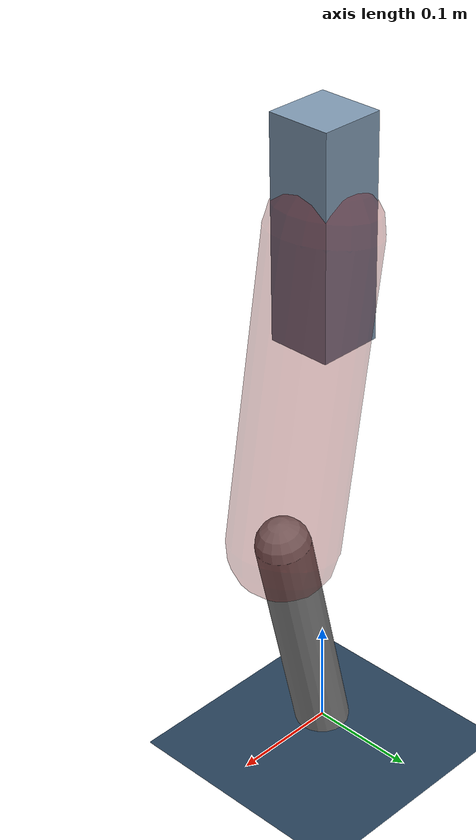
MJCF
<mujoco model="Hopper2D">
	<compiler inertiafromgeom="true" angle="radian" />
	<option timestep="0.001" integrator="implicit" cone="elliptic" solver="Newton" tolerance="1e-10" />

	<default>
		<geom contype="1" conaffinity="1" condim="3" friction="2 0.005 0.0001" solref="0.005 1" />
		<joint limited="true" damping="0.1" />
	</default>

	<asset>
		<texture name="skybox" type="skybox" builtin="gradient" rgb1=".4 .6 .8" rgb2="0 0 0" width="800" height="800" />
		<texture name="grid" type="2d" builtin="checker" rgb1=".1 .2 .3" rgb2=".2 .3 .4" width="300" height="300" mark="edge" markrgb=".2 .3 .4" />
		<material name="ground" texture="grid" texrepeat="1 1" texuniform="true" reflectance="0.1" />
		<material name="leg" rgba="0.5 0.6 0.7 1" />
	</asset>

	<worldbody>

		<geom name="floor" type="plane" size="5 5 0.25" material="ground" />

		<light directional="false" diffuse="0.8 0.8 0.8" specular="0.3 0.3 0.3" pos="0 0 2" dir="0 0 -1" />
		<light mode="targetbodycom" target="base" directional="false" diffuse="0.8 0.8 0.8" specular="0.3 0.3 0.3" pos="0 0 2" dir="0 0 -1" />

		<camera name="fixed" pos="0 -2 1" xyaxes="1 0 0 0 0 1" />
		<camera name="tracking" mode="trackcom" pos="0 -3 1" />

		<body name="root" pos="0 0 0.5014374376296985">
			<joint name="slide_x" type="slide" axis="1 0 0" range="-100 100" />
			<joint name="slide_z" type="slide" axis="0 0 1" range="0 10" />

			<body name="base" pos="0 0 0">
				<geom name="torso" type="box" size="0.03 0.03 0.1" mass="2.338" material="leg" />

				<body name="link1" pos="0 0 0" euler="0 1.395057256695113 0">
					<joint type="hinge" axis="0 -1 0" pos="0 0 0" name="hinge1" limited="true" range="-3.14 3.14" stiffness="0" damping="0.1" />
					<geom name="thigh" type="capsule" fromto="0 0 0 0.2857459831270912 0 0" size="0.05" rgba="0.5 0 0 0.3" mass="0.9504141544431463" />

					<body name="link2" pos="0.2857459831270912 0 0" euler="0 0.39894604418857094 0">
						<joint type="hinge" axis="0 -1 0" pos="0 0 0" name="hinge2" limited="true" range="-3.14 3.14" stiffness="0" damping="0.1" />
						<geom name="shank" type="capsule" fromto="0 0 0 0.22569145450260727 0 0" size="0.025" mass="0.42242230905234657" />

					</body>
				</body>
			</body>
		</body>
	</worldbody>

	<actuator>
		<motor name="torque1" joint="hinge1" ctrlrange="-73.80099410337549 73.80099410337549" ctrllimited="true" gear="1" />
		<motor name="torque2" joint="hinge2" ctrlrange="-92.16088655140541 92.16088655140541" ctrllimited="true" gear="1" />
	</actuator>
</mujoco>
